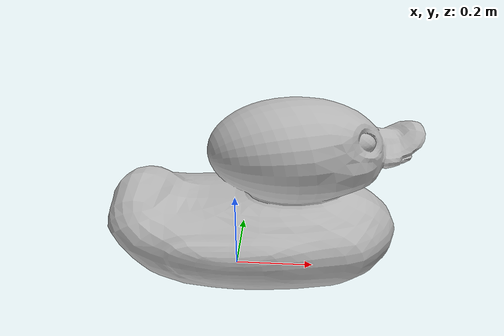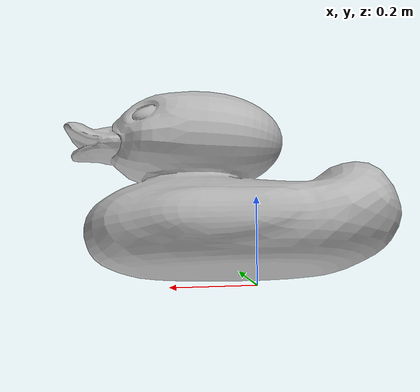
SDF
<?xml version="1.0" ?>
<sdf version="1.3">
    <model name="duck">
      <static>true</static>
      <link name="duck_body">
  		<collision name='duck_collision'>
          <geometry>
            <mesh>
            	<uri>model://duck/meshes/duck2.dae</uri>
        	</mesh>
        </geometry>
		</collision>

        <visual name="duck_visual">
          <geometry>
            <mesh>
            	<uri>model://duck/meshes/duck.dae</uri>
        	</mesh>
        </geometry>
      </visual>
    </link>
  	</model>
</sdf>
